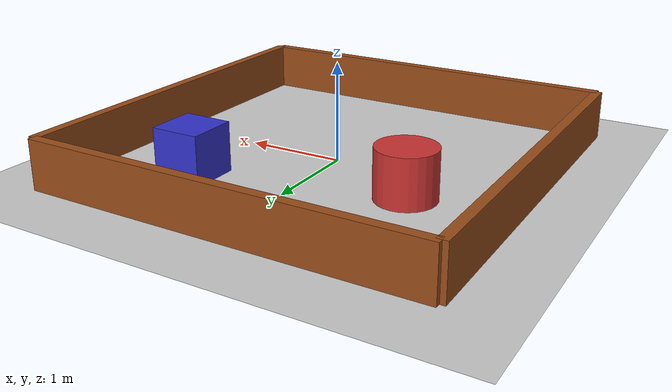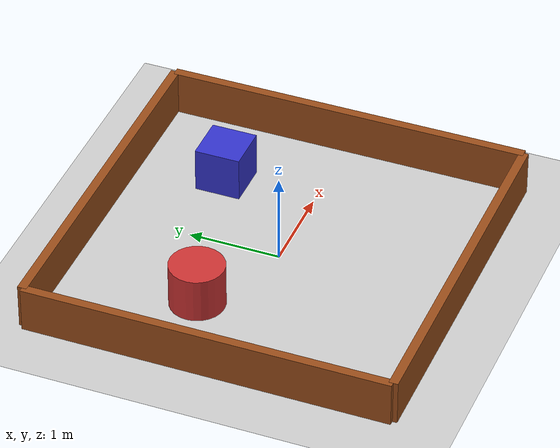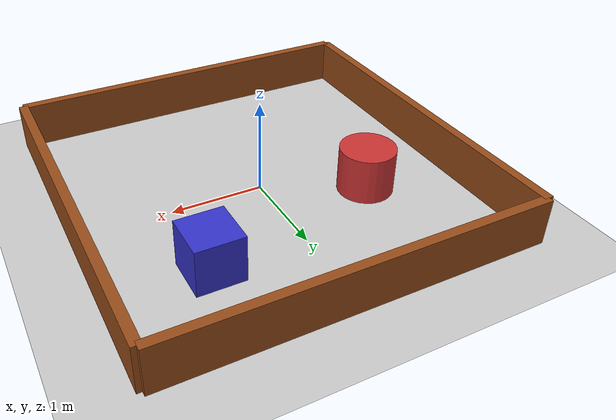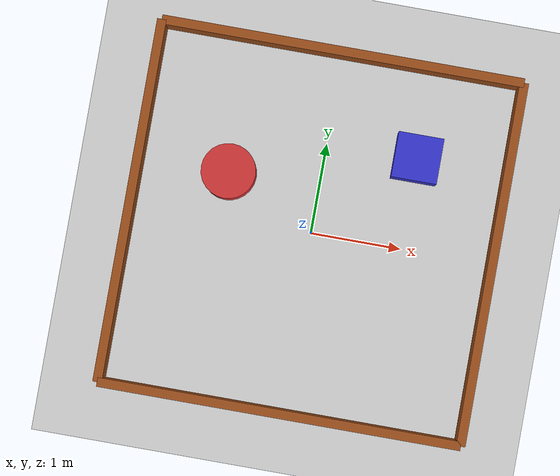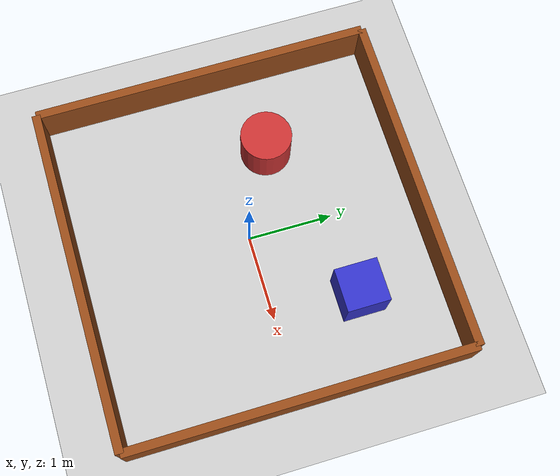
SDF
<?xml version="1.0" ?>
<sdf version="1.8">
  <world name="turtlebot3_world">

    <physics name="fast" type="ignored">
      <max_step_size>0.004</max_step_size>
      <real_time_factor>1.0</real_time_factor>
      <real_time_update_rate>250</real_time_update_rate>
    </physics>

    <plugin filename="ignition-gazebo-physics-system"
            name="ignition::gazebo::systems::Physics"/>
    <plugin filename="ignition-gazebo-scene-broadcaster-system"
            name="ignition::gazebo::systems::SceneBroadcaster"/>
    <plugin filename="ignition-gazebo-user-commands-system"
            name="ignition::gazebo::systems::UserCommands"/>
    <plugin filename="libignition-gazebo-sensors-system.so"
            name="ignition::gazebo::systems::Sensors">
      <render_engine>ogre2</render_engine>
    </plugin>
    <plugin filename="libignition-gazebo-imu-system.so"
            name="ignition::gazebo::systems::Imu"/>
    <plugin filename="libignition-gazebo-contact-system.so"
            name="ignition::gazebo::systems::Contact"/>

    <light type="directional" name="sun">
      <cast_shadows>true</cast_shadows>
      <pose>0 0 10 0 0 0</pose>
      <diffuse>0.8 0.8 0.8 1</diffuse>
      <specular>0.2 0.2 0.2 1</specular>
      <direction>-0.5 0.1 -0.9</direction>
    </light>

    <model name="ground_plane">
      <static>true</static>
      <link name="link">
        <collision name="collision">
          <geometry><plane><normal>0 0 1</normal><size>100 100</size></plane></geometry>
        </collision>
        <visual name="visual">
          <geometry><plane><normal>0 0 1</normal><size>100 100</size></plane></geometry>
          <material>
            <ambient>0.8 0.8 0.8 1</ambient>
            <diffuse>0.8 0.8 0.8 1</diffuse>
          </material>
        </visual>
      </link>
    </model>

    <!-- Walls forming a room -->
    <model name="wall_front">
      <static>true</static>
      <pose>2 0 0.25 0 0 0</pose>
      <link name="link">
        <collision name="c"><geometry><box><size>0.1 4 0.5</size></box></geometry></collision>
        <visual name="v"><geometry><box><size>0.1 4 0.5</size></box></geometry>
          <material><ambient>0.6 0.3 0.1 1</ambient><diffuse>0.6 0.3 0.1 1</diffuse></material>
        </visual>
      </link>
    </model>
    <model name="wall_back">
      <static>true</static>
      <pose>-2 0 0.25 0 0 0</pose>
      <link name="link">
        <collision name="c"><geometry><box><size>0.1 4 0.5</size></box></geometry></collision>
        <visual name="v"><geometry><box><size>0.1 4 0.5</size></box></geometry>
          <material><ambient>0.6 0.3 0.1 1</ambient><diffuse>0.6 0.3 0.1 1</diffuse></material>
        </visual>
      </link>
    </model>
    <model name="wall_left">
      <static>true</static>
      <pose>0 2 0.25 0 0 1.5708</pose>
      <link name="link">
        <collision name="c"><geometry><box><size>0.1 4 0.5</size></box></geometry></collision>
        <visual name="v"><geometry><box><size>0.1 4 0.5</size></box></geometry>
          <material><ambient>0.6 0.3 0.1 1</ambient><diffuse>0.6 0.3 0.1 1</diffuse></material>
        </visual>
      </link>
    </model>
    <model name="wall_right">
      <static>true</static>
      <pose>0 -2 0.25 0 0 1.5708</pose>
      <link name="link">
        <collision name="c"><geometry><box><size>0.1 4 0.5</size></box></geometry></collision>
        <visual name="v"><geometry><box><size>0.1 4 0.5</size></box></geometry>
          <material><ambient>0.6 0.3 0.1 1</ambient><diffuse>0.6 0.3 0.1 1</diffuse></material>
        </visual>
      </link>
    </model>

    <!-- Obstacles -->
    <model name="box1">
      <static>true</static>
      <pose>1 1 0.25 0 0 0</pose>
      <link name="link">
        <collision name="c"><geometry><box><size>0.5 0.5 0.5</size></box></geometry></collision>
        <visual name="v"><geometry><box><size>0.5 0.5 0.5</size></box></geometry>
          <material><ambient>0.2 0.2 0.8 1</ambient><diffuse>0.2 0.2 0.8 1</diffuse></material>
        </visual>
      </link>
    </model>
    <model name="cyl1">
      <static>true</static>
      <pose>-1 0.5 0.25 0 0 0</pose>
      <link name="link">
        <collision name="c"><geometry><cylinder><radius>0.3</radius><length>0.5</length></cylinder></geometry></collision>
        <visual name="v"><geometry><cylinder><radius>0.3</radius><length>0.5</length></cylinder></geometry>
          <material><ambient>0.8 0.2 0.2 1</ambient><diffuse>0.8 0.2 0.2 1</diffuse></material>
        </visual>
      </link>
    </model>

    <!-- TurtleBot3 -->
    <!-- ROBOTS_PLACEHOLDER -->
  </world>
</sdf>
